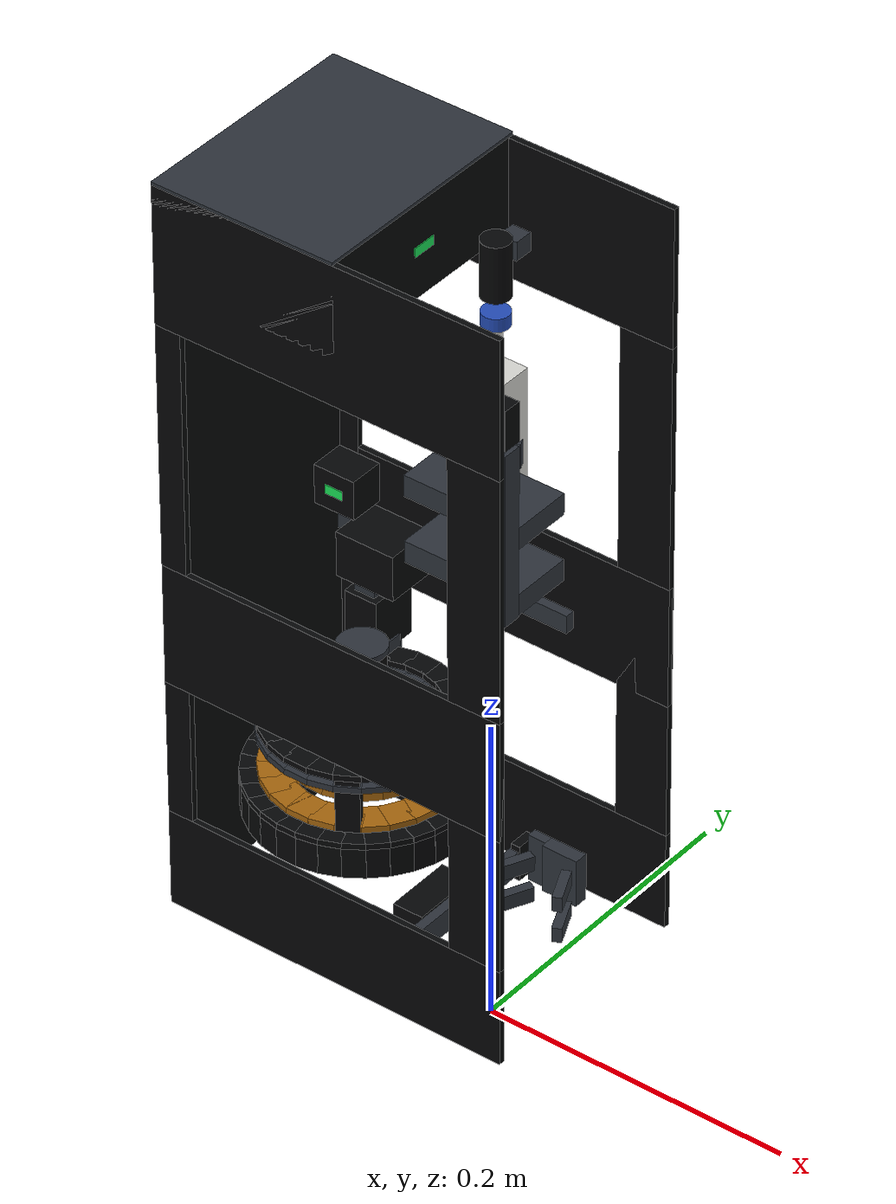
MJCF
<mujoco model="vertical_hand_minimal">
  <compiler angle="radian"/>
  <default>
    <geom condim="3" friction="0.6 0.005 0.0001" density="700"/>
  </default>
  <asset>
    <material name="Harness" rgba="0.020 0.022 0.026 1.000"/>
    <material name="Iris" rgba="0.650 0.400 0.050 1.000"/>
    <material name="LED" rgba="0.100 0.900 0.350 1.000"/>
    <material name="Links" rgba="0.180 0.200 0.230 1.000"/>
    <material name="Pipette" rgba="0.850 0.850 0.830 1.000"/>
    <material name="PipetteBlue" rgba="0.140 0.300 0.720 1.000"/>
    <material name="Steel" rgba="0.600 0.620 0.650 1.000"/>
  </asset>
  <worldbody>
    <body name="vertical_hand" pos="0.00000 0.00000 0.00000">
      <site name="pinch" pos="0.00000 0.00000 0.05710" quat="0 1 0 0" size="0.003" group="4"/>
      <geom name="cage_side_P_foot" type="box" size="0.11600 0.00200 0.03245" pos="-0.05100 0.07500 0.07755" material="Harness"/>
      <geom name="cage_side_P_band" type="box" size="0.11600 0.00200 0.04000" pos="-0.05100 0.07500 0.24000" material="Harness"/>
      <geom name="cage_side_P_top" type="box" size="0.11600 0.00200 0.04500" pos="-0.05100 0.07500 0.48500" material="Harness"/>
      <geom name="cage_side_P_back" type="box" size="0.00850 0.00200 0.16500" pos="-0.15850 0.07500 0.27500" material="Harness"/>
      <geom name="cage_side_P_front" type="box" size="0.01750 0.00200 0.16500" pos="0.04750 0.07500 0.27500" material="Harness"/>
      <geom name="cage_side_N_foot" type="box" size="0.11600 0.00200 0.03245" pos="-0.05100 -0.07500 0.07755" material="Harness"/>
      <geom name="cage_side_N_band" type="box" size="0.11600 0.00200 0.04000" pos="-0.05100 -0.07500 0.24000" material="Harness"/>
      <geom name="cage_side_N_top" type="box" size="0.11600 0.00200 0.04500" pos="-0.05100 -0.07500 0.48500" material="Harness"/>
      <geom name="cage_side_N_back" type="box" size="0.00850 0.00200 0.16500" pos="-0.15850 -0.07500 0.27500" material="Harness"/>
      <geom name="cage_side_N_front" type="box" size="0.01750 0.00200 0.16500" pos="0.04750 -0.07500 0.27500" material="Harness"/>
      <geom name="cage_back" type="box" size="0.00200 0.07300 0.24245" pos="-0.16500 0.00000 0.28755" material="Harness"/>
      <geom name="head" type="box" size="0.06100 0.07700 0.03000" pos="-0.10600 0.00000 0.50000" material="Harness"/>
      <geom name="head_top" type="box" size="0.06100 0.07700 0.00300" pos="-0.10600 0.00000 0.52900" material="Links"/>
      <geom name="head_led" type="box" size="0.00030 0.00800 0.00300" pos="-0.04490 0.00000 0.50000" material="LED"/>
      <geom name="beam" type="box" size="0.00300 0.07300 0.00800" pos="-0.02800 0.00000 0.05710" material="Links"/>
      <geom name="grip_servo" type="box" size="0.01000 0.02200 0.00800" pos="-0.04200 0.00000 0.05710" material="Harness"/>
      <geom name="x_rail" type="box" size="0.08000 0.00300 0.00600" pos="-0.08000 0.07000 0.23000" material="Links"/>
      <geom name="x_servo" type="box" size="0.01400 0.01150 0.01300" pos="-0.14900 0.06150 0.26300" material="Harness"/>
      <geom name="x_servo_led" type="box" size="0.00600 0.00040 0.00300" pos="-0.14900 0.05000 0.26300" material="LED"/>
      <geom name="x_carriage" type="box" size="0.02000 0.01650 0.01500" pos="-0.12000 0.05650 0.23100" material="Harness"/>
      <geom name="lift_column" type="box" size="0.00700 0.01200 0.03620" pos="-0.12000 0.05200 0.17980" material="Links"/>
      <geom name="p_rail" type="box" size="0.00600 0.00300 0.15580" pos="0.04500 -0.07000 0.29280" material="Harness"/>
      <geom name="p_servo" type="box" size="0.01600 0.00600 0.01300" pos="0.04500 -0.06100 0.46460" material="Harness"/>
      <geom name="p_servo_led" type="box" size="0.00600 0.00040 0.00300" pos="0.04500 -0.05500 0.46460" material="LED"/>
      <body name="jaw_P" pos="0.00000 0.00000 0.00000">
        <joint name="jaw_P" type="slide" axis="0 -1 0" range="0.00000 0.06135" damping="5"/>
        <geom name="jaw_P_pad" type="box" size="0.01200 0.00450 0.01600" pos="0.00000 0.06585 0.05710" material="Links"/>
        <geom name="jaw_P_carriage" type="box" size="0.00300 0.00700 0.01200" pos="-0.02700 0.06335 0.05710" material="Harness"/>
        <geom name="jaw_P_tab" type="box" size="0.00700 0.00300 0.01600" pos="-0.01700 0.06735 0.05710" material="Links"/>
        <geom name="jaw_P_wing_R0" type="box" size="0.01246 0.00300 0.00500" pos="0.01725 0.04105 0.04610" quat="0.843015 0 0 -0.537891" material="Links"/>
        <geom name="jaw_P_wing_R1" type="box" size="0.01246 0.00300 0.00500" pos="0.01725 0.04105 0.06810" quat="0.843015 0 0 -0.537891" material="Links"/>
        <geom name="jaw_P_wing_L0" type="box" size="0.01246 0.00300 0.00500" pos="-0.01725 0.04105 0.04610" quat="0.537891 0 0 -0.843015" material="Links"/>
        <geom name="jaw_P_wing_L1" type="box" size="0.01246 0.00300 0.00500" pos="-0.01725 0.04105 0.06810" quat="0.537891 0 0 -0.843015" material="Links"/>
        <site name="right_pad_touch" type="box" pos="0.00000 0.04535 0.05710" size="0.02400 0.01700 0.01600" rgba="0.9 0.4 0.1 0.25" group="4"/>
      </body>
      <body name="jaw_N" pos="0.00000 0.00000 0.00000">
        <joint name="jaw_N" type="slide" axis="0 1 0" range="0.00000 0.06135" damping="5"/>
        <geom name="jaw_N_pad" type="box" size="0.01200 0.00450 0.01600" pos="0.00000 -0.06585 0.05710" material="Links"/>
        <geom name="jaw_N_carriage" type="box" size="0.00300 0.00700 0.01200" pos="-0.02700 -0.06335 0.05710" material="Harness"/>
        <geom name="jaw_N_tab" type="box" size="0.00700 0.00300 0.01600" pos="-0.01700 -0.06735 0.05710" material="Links"/>
        <geom name="jaw_N_wing_R0" type="box" size="0.01246 0.00300 0.00500" pos="0.01725 -0.04105 0.05710" quat="0.843015 0 0 0.537891" material="Links"/>
        <geom name="jaw_N_wing_L0" type="box" size="0.01246 0.00300 0.00500" pos="-0.01725 -0.04105 0.05710" quat="0.537891 0 0 0.843015" material="Links"/>
        <site name="left_pad_touch" type="box" pos="0.00000 -0.04535 0.05710" size="0.02400 0.01700 0.01600" rgba="0.9 0.4 0.1 0.25" group="4"/>
      </body>
      <body name="clamp" pos="-0.09000 0.00000 0.11010">
        <geom name="lift_carriage" type="box" size="0.01100 0.01600 0.01900" pos="-0.03000 0.05200 0.08300" material="Harness"/>
        <geom name="bridge_y" type="box" size="0.01200 0.03000 0.00400" pos="-0.03000 0.02600 0.06600" material="Links"/>
        <geom name="bridge_x" type="box" size="0.01700 0.01200 0.00400" pos="-0.01700 0.00000 0.06600" material="Links"/>
        <geom name="mount_disc" type="cylinder" size="0.02000 0.00200" pos="0.00000 0.00000 0.06200" material="Harness"/>
        <geom name="sun_motor" type="cylinder" size="0.01400 0.01700" pos="0.00000 0.00000 0.08700" material="Harness"/>
        <geom name="sun_motor_cap" type="cylinder" size="0.01500 0.00200" pos="0.00000 0.00000 0.10400" material="Links"/>
        <geom name="housing_front_00" type="box" size="0.00500 0.00690 0.01000" pos="0.06400 0.00000 0.00600" material="Harness"/>
        <geom name="housing_front_01" type="box" size="0.00500 0.00690 0.01000" pos="0.06277 0.01249 0.00600" quat="0.995185 0 0 0.098017" material="Harness"/>
        <geom name="housing_front_02" type="box" size="0.00500 0.00690 0.01000" pos="0.05913 0.02449 0.00600" quat="0.980785 0 0 0.195090" material="Harness"/>
        <geom name="housing_front_03" type="box" size="0.00500 0.00690 0.01000" pos="0.05321 0.03556 0.00600" quat="0.956940 0 0 0.290285" material="Harness"/>
        <geom name="housing_front_04" type="box" size="0.00500 0.00690 0.01000" pos="0.04525 0.04525 0.00600" quat="0.923880 0 0 0.382683" material="Harness"/>
        <geom name="housing_front_05" type="box" size="0.00500 0.00690 0.01000" pos="0.03556 0.05321 0.00600" quat="0.881921 0 0 0.471397" material="Harness"/>
        <geom name="housing_front_06" type="box" size="0.00500 0.00690 0.01000" pos="0.02449 0.05913 0.00600" quat="0.831470 0 0 0.555570" material="Harness"/>
        <geom name="housing_front_07" type="box" size="0.00500 0.00690 0.01000" pos="0.01249 0.06277 0.00600" quat="0.773010 0 0 0.634393" material="Harness"/>
        <geom name="housing_front_08" type="box" size="0.00500 0.00690 0.01000" pos="0.00000 0.06400 0.00600" quat="0.707107 0 0 0.707107" material="Harness"/>
        <geom name="housing_front_09" type="box" size="0.00500 0.00690 0.01000" pos="-0.01249 0.06277 0.00600" quat="0.634393 0 0 0.773010" material="Harness"/>
        <geom name="housing_front_10" type="box" size="0.00500 0.00690 0.01000" pos="-0.02449 0.05913 0.00600" quat="0.555570 0 0 0.831470" material="Harness"/>
        <geom name="housing_front_11" type="box" size="0.00500 0.00690 0.01000" pos="-0.03556 0.05321 0.00600" quat="0.471397 0 0 0.881921" material="Harness"/>
        <geom name="housing_front_12" type="box" size="0.00500 0.00690 0.01000" pos="-0.04525 0.04525 0.00600" quat="0.382683 0 0 0.923880" material="Harness"/>
        <geom name="housing_front_13" type="box" size="0.00500 0.00690 0.01000" pos="-0.05321 0.03556 0.00600" quat="0.290285 0 0 0.956940" material="Harness"/>
        <geom name="housing_front_14" type="box" size="0.00500 0.00690 0.01000" pos="-0.05913 0.02449 0.00600" quat="0.195090 0 0 0.980785" material="Harness"/>
        <geom name="housing_front_15" type="box" size="0.00500 0.00690 0.01000" pos="-0.06277 0.01249 0.00600" quat="0.098017 0 0 0.995185" material="Harness"/>
        <geom name="housing_front_16" type="box" size="0.00500 0.00690 0.01000" pos="-0.06400 0.00000 0.00600" quat="0.000000 0 0 1.000000" material="Harness"/>
        <geom name="housing_front_17" type="box" size="0.00500 0.00690 0.01000" pos="-0.06277 -0.01249 0.00600" quat="-0.098017 0 0 0.995185" material="Harness"/>
        <geom name="housing_front_18" type="box" size="0.00500 0.00690 0.01000" pos="-0.05913 -0.02449 0.00600" quat="-0.195090 0 0 0.980785" material="Harness"/>
        <geom name="housing_front_19" type="box" size="0.00500 0.00690 0.01000" pos="-0.05321 -0.03556 0.00600" quat="-0.290285 0 0 0.956940" material="Harness"/>
        <geom name="housing_front_20" type="box" size="0.00500 0.00690 0.01000" pos="-0.04525 -0.04525 0.00600" quat="-0.382683 0 0 0.923880" material="Harness"/>
        <geom name="housing_front_21" type="box" size="0.00500 0.00690 0.01000" pos="-0.03556 -0.05321 0.00600" quat="-0.471397 0 0 0.881921" material="Harness"/>
        <geom name="housing_front_22" type="box" size="0.00500 0.00690 0.01000" pos="-0.02449 -0.05913 0.00600" quat="-0.555570 0 0 0.831470" material="Harness"/>
        <geom name="housing_front_23" type="box" size="0.00500 0.00690 0.01000" pos="-0.01249 -0.06277 0.00600" quat="-0.634393 0 0 0.773010" material="Harness"/>
        <geom name="housing_front_24" type="box" size="0.00500 0.00690 0.01000" pos="-0.00000 -0.06400 0.00600" quat="-0.707107 0 0 0.707107" material="Harness"/>
        <geom name="housing_front_25" type="box" size="0.00500 0.00690 0.01000" pos="0.01249 -0.06277 0.00600" quat="-0.773010 0 0 0.634393" material="Harness"/>
        <geom name="housing_front_26" type="box" size="0.00500 0.00690 0.01000" pos="0.02449 -0.05913 0.00600" quat="-0.831470 0 0 0.555570" material="Harness"/>
        <geom name="housing_front_27" type="box" size="0.00500 0.00690 0.01000" pos="0.03556 -0.05321 0.00600" quat="-0.881921 0 0 0.471397" material="Harness"/>
        <geom name="housing_front_28" type="box" size="0.00500 0.00690 0.01000" pos="0.04525 -0.04525 0.00600" quat="-0.923880 0 0 0.382683" material="Harness"/>
        <geom name="housing_front_29" type="box" size="0.00500 0.00690 0.01000" pos="0.05321 -0.03556 0.00600" quat="-0.956940 0 0 0.290285" material="Harness"/>
        <geom name="housing_front_30" type="box" size="0.00500 0.00690 0.01000" pos="0.05913 -0.02449 0.00600" quat="-0.980785 0 0 0.195090" material="Harness"/>
        <geom name="housing_front_31" type="box" size="0.00500 0.00690 0.01000" pos="0.06277 -0.01249 0.00600" quat="-0.995185 0 0 0.098017" material="Harness"/>
        <geom name="housing_shoulder_00" type="box" size="0.01050 0.00690 0.00200" pos="0.05850 0.00000 0.01800" material="Harness"/>
        <geom name="housing_shoulder_01" type="box" size="0.01050 0.00690 0.00200" pos="0.05738 0.01141 0.01800" quat="0.995185 0 0 0.098017" material="Harness"/>
        <geom name="housing_shoulder_02" type="box" size="0.01050 0.00690 0.00200" pos="0.05405 0.02239 0.01800" quat="0.980785 0 0 0.195090" material="Harness"/>
        <geom name="housing_shoulder_03" type="box" size="0.01050 0.00690 0.00200" pos="0.04864 0.03250 0.01800" quat="0.956940 0 0 0.290285" material="Harness"/>
        <geom name="housing_shoulder_04" type="box" size="0.01050 0.00690 0.00200" pos="0.04137 0.04137 0.01800" quat="0.923880 0 0 0.382683" material="Harness"/>
        <geom name="housing_shoulder_05" type="box" size="0.01050 0.00690 0.00200" pos="0.03250 0.04864 0.01800" quat="0.881921 0 0 0.471397" material="Harness"/>
        <geom name="housing_shoulder_06" type="box" size="0.01050 0.00690 0.00200" pos="0.02239 0.05405 0.01800" quat="0.831470 0 0 0.555570" material="Harness"/>
        <geom name="housing_shoulder_07" type="box" size="0.01050 0.00690 0.00200" pos="0.01141 0.05738 0.01800" quat="0.773010 0 0 0.634393" material="Harness"/>
        <geom name="housing_shoulder_08" type="box" size="0.01050 0.00690 0.00200" pos="0.00000 0.05850 0.01800" quat="0.707107 0 0 0.707107" material="Harness"/>
        <geom name="housing_shoulder_09" type="box" size="0.01050 0.00690 0.00200" pos="-0.01141 0.05738 0.01800" quat="0.634393 0 0 0.773010" material="Harness"/>
        <geom name="housing_shoulder_10" type="box" size="0.01050 0.00690 0.00200" pos="-0.02239 0.05405 0.01800" quat="0.555570 0 0 0.831470" material="Harness"/>
        <geom name="housing_shoulder_11" type="box" size="0.01050 0.00690 0.00200" pos="-0.03250 0.04864 0.01800" quat="0.471397 0 0 0.881921" material="Harness"/>
        <geom name="housing_shoulder_12" type="box" size="0.01050 0.00690 0.00200" pos="-0.04137 0.04137 0.01800" quat="0.382683 0 0 0.923880" material="Harness"/>
        <geom name="housing_shoulder_13" type="box" size="0.01050 0.00690 0.00200" pos="-0.04864 0.03250 0.01800" quat="0.290285 0 0 0.956940" material="Harness"/>
        <geom name="housing_shoulder_14" type="box" size="0.01050 0.00690 0.00200" pos="-0.05405 0.02239 0.01800" quat="0.195090 0 0 0.980785" material="Harness"/>
        <geom name="housing_shoulder_15" type="box" size="0.01050 0.00690 0.00200" pos="-0.05738 0.01141 0.01800" quat="0.098017 0 0 0.995185" material="Harness"/>
        <geom name="housing_shoulder_16" type="box" size="0.01050 0.00690 0.00200" pos="-0.05850 0.00000 0.01800" quat="0.000000 0 0 1.000000" material="Harness"/>
        <geom name="housing_shoulder_17" type="box" size="0.01050 0.00690 0.00200" pos="-0.05738 -0.01141 0.01800" quat="-0.098017 0 0 0.995185" material="Harness"/>
        <geom name="housing_shoulder_18" type="box" size="0.01050 0.00690 0.00200" pos="-0.05405 -0.02239 0.01800" quat="-0.195090 0 0 0.980785" material="Harness"/>
        <geom name="housing_shoulder_19" type="box" size="0.01050 0.00690 0.00200" pos="-0.04864 -0.03250 0.01800" quat="-0.290285 0 0 0.956940" material="Harness"/>
        <geom name="housing_shoulder_20" type="box" size="0.01050 0.00690 0.00200" pos="-0.04137 -0.04137 0.01800" quat="-0.382683 0 0 0.923880" material="Harness"/>
        <geom name="housing_shoulder_21" type="box" size="0.01050 0.00690 0.00200" pos="-0.03250 -0.04864 0.01800" quat="-0.471397 0 0 0.881921" material="Harness"/>
        <geom name="housing_shoulder_22" type="box" size="0.01050 0.00690 0.00200" pos="-0.02239 -0.05405 0.01800" quat="-0.555570 0 0 0.831470" material="Harness"/>
        <geom name="housing_shoulder_23" type="box" size="0.01050 0.00690 0.00200" pos="-0.01141 -0.05738 0.01800" quat="-0.634393 0 0 0.773010" material="Harness"/>
        <geom name="housing_shoulder_24" type="box" size="0.01050 0.00690 0.00200" pos="-0.00000 -0.05850 0.01800" quat="-0.707107 0 0 0.707107" material="Harness"/>
        <geom name="housing_shoulder_25" type="box" size="0.01050 0.00690 0.00200" pos="0.01141 -0.05738 0.01800" quat="-0.773010 0 0 0.634393" material="Harness"/>
        <geom name="housing_shoulder_26" type="box" size="0.01050 0.00690 0.00200" pos="0.02239 -0.05405 0.01800" quat="-0.831470 0 0 0.555570" material="Harness"/>
        <geom name="housing_shoulder_27" type="box" size="0.01050 0.00690 0.00200" pos="0.03250 -0.04864 0.01800" quat="-0.881921 0 0 0.471397" material="Harness"/>
        <geom name="housing_shoulder_28" type="box" size="0.01050 0.00690 0.00200" pos="0.04137 -0.04137 0.01800" quat="-0.923880 0 0 0.382683" material="Harness"/>
        <geom name="housing_shoulder_29" type="box" size="0.01050 0.00690 0.00200" pos="0.04864 -0.03250 0.01800" quat="-0.956940 0 0 0.290285" material="Harness"/>
        <geom name="housing_shoulder_30" type="box" size="0.01050 0.00690 0.00200" pos="0.05405 -0.02239 0.01800" quat="-0.980785 0 0 0.195090" material="Harness"/>
        <geom name="housing_shoulder_31" type="box" size="0.01050 0.00690 0.00200" pos="0.05738 -0.01141 0.01800" quat="-0.995185 0 0 0.098017" material="Harness"/>
        <geom name="strut_0" type="box" size="0.00500 0.00700 0.02100" pos="0.02700 0.04677 0.03900" quat="0.866025 0 0 0.500000" material="Harness"/>
        <geom name="strut_1" type="box" size="0.00500 0.00700 0.02100" pos="-0.05400 0.00000 0.03900" quat="0.000000 0 0 1.000000" material="Harness"/>
        <geom name="strut_2" type="box" size="0.00500 0.00700 0.02100" pos="0.02700 -0.04677 0.03900" quat="-0.866025 0 0 0.500000" material="Harness"/>
        <geom name="carrier_00" type="box" size="0.02000 0.00612 0.00300" pos="0.02600 0.00000 0.04500" material="Harness"/>
        <geom name="carrier_01" type="box" size="0.02000 0.00612 0.00300" pos="0.02511 0.00673 0.04500" quat="0.991445 0 0 0.130526" material="Harness"/>
        <geom name="carrier_02" type="box" size="0.02000 0.00612 0.00300" pos="0.02252 0.01300 0.04500" quat="0.965926 0 0 0.258819" material="Harness"/>
        <geom name="carrier_03" type="box" size="0.02000 0.00612 0.00300" pos="0.01838 0.01838 0.04500" quat="0.923880 0 0 0.382683" material="Harness"/>
        <geom name="carrier_04" type="box" size="0.02000 0.00612 0.00300" pos="0.01300 0.02252 0.04500" quat="0.866025 0 0 0.500000" material="Harness"/>
        <geom name="carrier_05" type="box" size="0.02000 0.00612 0.00300" pos="0.00673 0.02511 0.04500" quat="0.793353 0 0 0.608761" material="Harness"/>
        <geom name="carrier_06" type="box" size="0.02000 0.00612 0.00300" pos="0.00000 0.02600 0.04500" quat="0.707107 0 0 0.707107" material="Harness"/>
        <geom name="carrier_07" type="box" size="0.02000 0.00612 0.00300" pos="-0.00673 0.02511 0.04500" quat="0.608761 0 0 0.793353" material="Harness"/>
        <geom name="carrier_08" type="box" size="0.02000 0.00612 0.00300" pos="-0.01300 0.02252 0.04500" quat="0.500000 0 0 0.866025" material="Harness"/>
        <geom name="carrier_09" type="box" size="0.02000 0.00612 0.00300" pos="-0.01838 0.01838 0.04500" quat="0.382683 0 0 0.923880" material="Harness"/>
        <geom name="carrier_10" type="box" size="0.02000 0.00612 0.00300" pos="-0.02252 0.01300 0.04500" quat="0.258819 0 0 0.965926" material="Harness"/>
        <geom name="carrier_11" type="box" size="0.02000 0.00612 0.00300" pos="-0.02511 0.00673 0.04500" quat="0.130526 0 0 0.991445" material="Harness"/>
        <geom name="carrier_12" type="box" size="0.02000 0.00612 0.00300" pos="-0.02600 0.00000 0.04500" quat="0.000000 0 0 1.000000" material="Harness"/>
        <geom name="carrier_13" type="box" size="0.02000 0.00612 0.00300" pos="-0.02511 -0.00673 0.04500" quat="-0.130526 0 0 0.991445" material="Harness"/>
        <geom name="carrier_14" type="box" size="0.02000 0.00612 0.00300" pos="-0.02252 -0.01300 0.04500" quat="-0.258819 0 0 0.965926" material="Harness"/>
        <geom name="carrier_15" type="box" size="0.02000 0.00612 0.00300" pos="-0.01838 -0.01838 0.04500" quat="-0.382683 0 0 0.923880" material="Harness"/>
        <geom name="carrier_16" type="box" size="0.02000 0.00612 0.00300" pos="-0.01300 -0.02252 0.04500" quat="-0.500000 0 0 0.866025" material="Harness"/>
        <geom name="carrier_17" type="box" size="0.02000 0.00612 0.00300" pos="-0.00673 -0.02511 0.04500" quat="-0.608761 0 0 0.793353" material="Harness"/>
        <geom name="carrier_18" type="box" size="0.02000 0.00612 0.00300" pos="-0.00000 -0.02600 0.04500" quat="-0.707107 0 0 0.707107" material="Harness"/>
        <geom name="carrier_19" type="box" size="0.02000 0.00612 0.00300" pos="0.00673 -0.02511 0.04500" quat="-0.793353 0 0 0.608761" material="Harness"/>
        <geom name="carrier_20" type="box" size="0.02000 0.00612 0.00300" pos="0.01300 -0.02252 0.04500" quat="-0.866025 0 0 0.500000" material="Harness"/>
        <geom name="carrier_21" type="box" size="0.02000 0.00612 0.00300" pos="0.01838 -0.01838 0.04500" quat="-0.923880 0 0 0.382683" material="Harness"/>
        <geom name="carrier_22" type="box" size="0.02000 0.00612 0.00300" pos="0.02252 -0.01300 0.04500" quat="-0.965926 0 0 0.258819" material="Harness"/>
        <geom name="carrier_23" type="box" size="0.02000 0.00612 0.00300" pos="0.02511 -0.00673 0.04500" quat="-0.991445 0 0 0.130526" material="Harness"/>
        <geom name="clutch_00" type="box" size="0.00700 0.00799 0.00200" pos="0.05300 0.00000 0.05000" material="Links"/>
        <geom name="clutch_01" type="box" size="0.00700 0.00799 0.00200" pos="0.05119 0.01372 0.05000" quat="0.991445 0 0 0.130526" material="Links"/>
        <geom name="clutch_02" type="box" size="0.00700 0.00799 0.00200" pos="0.04590 0.02650 0.05000" quat="0.965926 0 0 0.258819" material="Links"/>
        <geom name="clutch_03" type="box" size="0.00700 0.00799 0.00200" pos="0.03748 0.03748 0.05000" quat="0.923880 0 0 0.382683" material="Links"/>
        <geom name="clutch_04" type="box" size="0.00700 0.00799 0.00200" pos="0.02650 0.04590 0.05000" quat="0.866025 0 0 0.500000" material="Links"/>
        <geom name="clutch_05" type="box" size="0.00700 0.00799 0.00200" pos="0.01372 0.05119 0.05000" quat="0.793353 0 0 0.608761" material="Links"/>
        <geom name="clutch_06" type="box" size="0.00700 0.00799 0.00200" pos="0.00000 0.05300 0.05000" quat="0.707107 0 0 0.707107" material="Links"/>
        <geom name="clutch_07" type="box" size="0.00700 0.00799 0.00200" pos="-0.01372 0.05119 0.05000" quat="0.608761 0 0 0.793353" material="Links"/>
        <geom name="clutch_08" type="box" size="0.00700 0.00799 0.00200" pos="-0.02650 0.04590 0.05000" quat="0.500000 0 0 0.866025" material="Links"/>
        <geom name="clutch_09" type="box" size="0.00700 0.00799 0.00200" pos="-0.03748 0.03748 0.05000" quat="0.382683 0 0 0.923880" material="Links"/>
        <geom name="clutch_10" type="box" size="0.00700 0.00799 0.00200" pos="-0.04590 0.02650 0.05000" quat="0.258819 0 0 0.965926" material="Links"/>
        <geom name="clutch_11" type="box" size="0.00700 0.00799 0.00200" pos="-0.05119 0.01372 0.05000" quat="0.130526 0 0 0.991445" material="Links"/>
        <geom name="clutch_12" type="box" size="0.00700 0.00799 0.00200" pos="-0.05300 0.00000 0.05000" quat="0.000000 0 0 1.000000" material="Links"/>
        <geom name="clutch_13" type="box" size="0.00700 0.00799 0.00200" pos="-0.05119 -0.01372 0.05000" quat="-0.130526 0 0 0.991445" material="Links"/>
        <geom name="clutch_14" type="box" size="0.00700 0.00799 0.00200" pos="-0.04590 -0.02650 0.05000" quat="-0.258819 0 0 0.965926" material="Links"/>
        <geom name="clutch_15" type="box" size="0.00700 0.00799 0.00200" pos="-0.03748 -0.03748 0.05000" quat="-0.382683 0 0 0.923880" material="Links"/>
        <geom name="clutch_16" type="box" size="0.00700 0.00799 0.00200" pos="-0.02650 -0.04590 0.05000" quat="-0.500000 0 0 0.866025" material="Links"/>
        <geom name="clutch_17" type="box" size="0.00700 0.00799 0.00200" pos="-0.01372 -0.05119 0.05000" quat="-0.608761 0 0 0.793353" material="Links"/>
        <geom name="clutch_18" type="box" size="0.00700 0.00799 0.00200" pos="-0.00000 -0.05300 0.05000" quat="-0.707107 0 0 0.707107" material="Links"/>
        <geom name="clutch_19" type="box" size="0.00700 0.00799 0.00200" pos="0.01372 -0.05119 0.05000" quat="-0.793353 0 0 0.608761" material="Links"/>
        <geom name="clutch_20" type="box" size="0.00700 0.00799 0.00200" pos="0.02650 -0.04590 0.05000" quat="-0.866025 0 0 0.500000" material="Links"/>
        <geom name="clutch_21" type="box" size="0.00700 0.00799 0.00200" pos="0.03748 -0.03748 0.05000" quat="-0.923880 0 0 0.382683" material="Links"/>
        <geom name="clutch_22" type="box" size="0.00700 0.00799 0.00200" pos="0.04590 -0.02650 0.05000" quat="-0.965926 0 0 0.258819" material="Links"/>
        <geom name="clutch_23" type="box" size="0.00700 0.00799 0.00200" pos="0.05119 -0.01372 0.05000" quat="-0.991445 0 0 0.130526" material="Links"/>
        <geom name="top_ring_00" type="box" size="0.00700 0.00799 0.00200" pos="0.05300 0.00000 0.05800" material="Harness"/>
        <geom name="top_ring_01" type="box" size="0.00700 0.00799 0.00200" pos="0.05119 0.01372 0.05800" quat="0.991445 0 0 0.130526" material="Harness"/>
        <geom name="top_ring_02" type="box" size="0.00700 0.00799 0.00200" pos="0.04590 0.02650 0.05800" quat="0.965926 0 0 0.258819" material="Harness"/>
        <geom name="top_ring_03" type="box" size="0.00700 0.00799 0.00200" pos="0.03748 0.03748 0.05800" quat="0.923880 0 0 0.382683" material="Harness"/>
        <geom name="top_ring_04" type="box" size="0.00700 0.00799 0.00200" pos="0.02650 0.04590 0.05800" quat="0.866025 0 0 0.500000" material="Harness"/>
        <geom name="top_ring_05" type="box" size="0.00700 0.00799 0.00200" pos="0.01372 0.05119 0.05800" quat="0.793353 0 0 0.608761" material="Harness"/>
        <geom name="top_ring_06" type="box" size="0.00700 0.00799 0.00200" pos="0.00000 0.05300 0.05800" quat="0.707107 0 0 0.707107" material="Harness"/>
        <geom name="top_ring_07" type="box" size="0.00700 0.00799 0.00200" pos="-0.01372 0.05119 0.05800" quat="0.608761 0 0 0.793353" material="Harness"/>
        <geom name="top_ring_08" type="box" size="0.00700 0.00799 0.00200" pos="-0.02650 0.04590 0.05800" quat="0.500000 0 0 0.866025" material="Harness"/>
        <geom name="top_ring_09" type="box" size="0.00700 0.00799 0.00200" pos="-0.03748 0.03748 0.05800" quat="0.382683 0 0 0.923880" material="Harness"/>
        <geom name="top_ring_10" type="box" size="0.00700 0.00799 0.00200" pos="-0.04590 0.02650 0.05800" quat="0.258819 0 0 0.965926" material="Harness"/>
        <geom name="top_ring_11" type="box" size="0.00700 0.00799 0.00200" pos="-0.05119 0.01372 0.05800" quat="0.130526 0 0 0.991445" material="Harness"/>
        <geom name="top_ring_12" type="box" size="0.00700 0.00799 0.00200" pos="-0.05300 0.00000 0.05800" quat="0.000000 0 0 1.000000" material="Harness"/>
        <geom name="top_ring_13" type="box" size="0.00700 0.00799 0.00200" pos="-0.05119 -0.01372 0.05800" quat="-0.130526 0 0 0.991445" material="Harness"/>
        <geom name="top_ring_14" type="box" size="0.00700 0.00799 0.00200" pos="-0.04590 -0.02650 0.05800" quat="-0.258819 0 0 0.965926" material="Harness"/>
        <geom name="top_ring_15" type="box" size="0.00700 0.00799 0.00200" pos="-0.03748 -0.03748 0.05800" quat="-0.382683 0 0 0.923880" material="Harness"/>
        <geom name="top_ring_16" type="box" size="0.00700 0.00799 0.00200" pos="-0.02650 -0.04590 0.05800" quat="-0.500000 0 0 0.866025" material="Harness"/>
        <geom name="top_ring_17" type="box" size="0.00700 0.00799 0.00200" pos="-0.01372 -0.05119 0.05800" quat="-0.608761 0 0 0.793353" material="Harness"/>
        <geom name="top_ring_18" type="box" size="0.00700 0.00799 0.00200" pos="-0.00000 -0.05300 0.05800" quat="-0.707107 0 0 0.707107" material="Harness"/>
        <geom name="top_ring_19" type="box" size="0.00700 0.00799 0.00200" pos="0.01372 -0.05119 0.05800" quat="-0.793353 0 0 0.608761" material="Harness"/>
        <geom name="top_ring_20" type="box" size="0.00700 0.00799 0.00200" pos="0.02650 -0.04590 0.05800" quat="-0.866025 0 0 0.500000" material="Harness"/>
        <geom name="top_ring_21" type="box" size="0.00700 0.00799 0.00200" pos="0.03748 -0.03748 0.05800" quat="-0.923880 0 0 0.382683" material="Harness"/>
        <geom name="top_ring_22" type="box" size="0.00700 0.00799 0.00200" pos="0.04590 -0.02650 0.05800" quat="-0.965926 0 0 0.258819" material="Harness"/>
        <geom name="top_ring_23" type="box" size="0.00700 0.00799 0.00200" pos="0.05119 -0.01372 0.05800" quat="-0.991445 0 0 0.130526" material="Harness"/>
        <geom name="cam_ring_00" type="box" size="0.00900 0.00786 0.00300" pos="0.05000 0.00000 0.02100" material="Iris"/>
        <geom name="cam_ring_01" type="box" size="0.00900 0.00786 0.00300" pos="0.04830 0.01294 0.02100" quat="0.991445 0 0 0.130526" material="Iris"/>
        <geom name="cam_ring_02" type="box" size="0.00900 0.00786 0.00300" pos="0.04330 0.02500 0.02100" quat="0.965926 0 0 0.258819" material="Iris"/>
        <geom name="cam_ring_03" type="box" size="0.00900 0.00786 0.00300" pos="0.03536 0.03536 0.02100" quat="0.923880 0 0 0.382683" material="Iris"/>
        <geom name="cam_ring_04" type="box" size="0.00900 0.00786 0.00300" pos="0.02500 0.04330 0.02100" quat="0.866025 0 0 0.500000" material="Iris"/>
        <geom name="cam_ring_05" type="box" size="0.00900 0.00786 0.00300" pos="0.01294 0.04830 0.02100" quat="0.793353 0 0 0.608761" material="Iris"/>
        <geom name="cam_ring_06" type="box" size="0.00900 0.00786 0.00300" pos="0.00000 0.05000 0.02100" quat="0.707107 0 0 0.707107" material="Iris"/>
        <geom name="cam_ring_07" type="box" size="0.00900 0.00786 0.00300" pos="-0.01294 0.04830 0.02100" quat="0.608761 0 0 0.793353" material="Iris"/>
        <geom name="cam_ring_08" type="box" size="0.00900 0.00786 0.00300" pos="-0.02500 0.04330 0.02100" quat="0.500000 0 0 0.866025" material="Iris"/>
        <geom name="cam_ring_09" type="box" size="0.00900 0.00786 0.00300" pos="-0.03536 0.03536 0.02100" quat="0.382683 0 0 0.923880" material="Iris"/>
        <geom name="cam_ring_10" type="box" size="0.00900 0.00786 0.00300" pos="-0.04330 0.02500 0.02100" quat="0.258819 0 0 0.965926" material="Iris"/>
        <geom name="cam_ring_11" type="box" size="0.00900 0.00786 0.00300" pos="-0.04830 0.01294 0.02100" quat="0.130526 0 0 0.991445" material="Iris"/>
        <geom name="cam_ring_12" type="box" size="0.00900 0.00786 0.00300" pos="-0.05000 0.00000 0.02100" quat="0.000000 0 0 1.000000" material="Iris"/>
        <geom name="cam_ring_13" type="box" size="0.00900 0.00786 0.00300" pos="-0.04830 -0.01294 0.02100" quat="-0.130526 0 0 0.991445" material="Iris"/>
        <geom name="cam_ring_14" type="box" size="0.00900 0.00786 0.00300" pos="-0.04330 -0.02500 0.02100" quat="-0.258819 0 0 0.965926" material="Iris"/>
        <geom name="cam_ring_15" type="box" size="0.00900 0.00786 0.00300" pos="-0.03536 -0.03536 0.02100" quat="-0.382683 0 0 0.923880" material="Iris"/>
        <geom name="cam_ring_16" type="box" size="0.00900 0.00786 0.00300" pos="-0.02500 -0.04330 0.02100" quat="-0.500000 0 0 0.866025" material="Iris"/>
        <geom name="cam_ring_17" type="box" size="0.00900 0.00786 0.00300" pos="-0.01294 -0.04830 0.02100" quat="-0.608761 0 0 0.793353" material="Iris"/>
        <geom name="cam_ring_18" type="box" size="0.00900 0.00786 0.00300" pos="-0.00000 -0.05000 0.02100" quat="-0.707107 0 0 0.707107" material="Iris"/>
        <geom name="cam_ring_19" type="box" size="0.00900 0.00786 0.00300" pos="0.01294 -0.04830 0.02100" quat="-0.793353 0 0 0.608761" material="Iris"/>
        <geom name="cam_ring_20" type="box" size="0.00900 0.00786 0.00300" pos="0.02500 -0.04330 0.02100" quat="-0.866025 0 0 0.500000" material="Iris"/>
        <geom name="cam_ring_21" type="box" size="0.00900 0.00786 0.00300" pos="0.03536 -0.03536 0.02100" quat="-0.923880 0 0 0.382683" material="Iris"/>
        <geom name="cam_ring_22" type="box" size="0.00900 0.00786 0.00300" pos="0.04330 -0.02500 0.02100" quat="-0.965926 0 0 0.258819" material="Iris"/>
        <geom name="cam_ring_23" type="box" size="0.00900 0.00786 0.00300" pos="0.04830 -0.01294 0.02100" quat="-0.991445 0 0 0.130526" material="Iris"/>
        <geom name="ring_gear_00" type="box" size="0.00400 0.00586 0.00400" pos="0.04000 0.00000 0.03400" material="Iris"/>
        <geom name="ring_gear_01" type="box" size="0.00400 0.00586 0.00400" pos="0.03864 0.01035 0.03400" quat="0.991445 0 0 0.130526" material="Iris"/>
        <geom name="ring_gear_02" type="box" size="0.00400 0.00586 0.00400" pos="0.03464 0.02000 0.03400" quat="0.965926 0 0 0.258819" material="Iris"/>
        <geom name="ring_gear_03" type="box" size="0.00400 0.00586 0.00400" pos="0.02828 0.02828 0.03400" quat="0.923880 0 0 0.382683" material="Iris"/>
        <geom name="ring_gear_04" type="box" size="0.00400 0.00586 0.00400" pos="0.02000 0.03464 0.03400" quat="0.866025 0 0 0.500000" material="Iris"/>
        <geom name="ring_gear_05" type="box" size="0.00400 0.00586 0.00400" pos="0.01035 0.03864 0.03400" quat="0.793353 0 0 0.608761" material="Iris"/>
        <geom name="ring_gear_06" type="box" size="0.00400 0.00586 0.00400" pos="0.00000 0.04000 0.03400" quat="0.707107 0 0 0.707107" material="Iris"/>
        <geom name="ring_gear_07" type="box" size="0.00400 0.00586 0.00400" pos="-0.01035 0.03864 0.03400" quat="0.608761 0 0 0.793353" material="Iris"/>
        <geom name="ring_gear_08" type="box" size="0.00400 0.00586 0.00400" pos="-0.02000 0.03464 0.03400" quat="0.500000 0 0 0.866025" material="Iris"/>
        <geom name="ring_gear_09" type="box" size="0.00400 0.00586 0.00400" pos="-0.02828 0.02828 0.03400" quat="0.382683 0 0 0.923880" material="Iris"/>
        <geom name="ring_gear_10" type="box" size="0.00400 0.00586 0.00400" pos="-0.03464 0.02000 0.03400" quat="0.258819 0 0 0.965926" material="Iris"/>
        <geom name="ring_gear_11" type="box" size="0.00400 0.00586 0.00400" pos="-0.03864 0.01035 0.03400" quat="0.130526 0 0 0.991445" material="Iris"/>
        <geom name="ring_gear_12" type="box" size="0.00400 0.00586 0.00400" pos="-0.04000 0.00000 0.03400" quat="0.000000 0 0 1.000000" material="Iris"/>
        <geom name="ring_gear_13" type="box" size="0.00400 0.00586 0.00400" pos="-0.03864 -0.01035 0.03400" quat="-0.130526 0 0 0.991445" material="Iris"/>
        <geom name="ring_gear_14" type="box" size="0.00400 0.00586 0.00400" pos="-0.03464 -0.02000 0.03400" quat="-0.258819 0 0 0.965926" material="Iris"/>
        <geom name="ring_gear_15" type="box" size="0.00400 0.00586 0.00400" pos="-0.02828 -0.02828 0.03400" quat="-0.382683 0 0 0.923880" material="Iris"/>
        <geom name="ring_gear_16" type="box" size="0.00400 0.00586 0.00400" pos="-0.02000 -0.03464 0.03400" quat="-0.500000 0 0 0.866025" material="Iris"/>
        <geom name="ring_gear_17" type="box" size="0.00400 0.00586 0.00400" pos="-0.01035 -0.03864 0.03400" quat="-0.608761 0 0 0.793353" material="Iris"/>
        <geom name="ring_gear_18" type="box" size="0.00400 0.00586 0.00400" pos="-0.00000 -0.04000 0.03400" quat="-0.707107 0 0 0.707107" material="Iris"/>
        <geom name="ring_gear_19" type="box" size="0.00400 0.00586 0.00400" pos="0.01035 -0.03864 0.03400" quat="-0.793353 0 0 0.608761" material="Iris"/>
        <geom name="ring_gear_20" type="box" size="0.00400 0.00586 0.00400" pos="0.02000 -0.03464 0.03400" quat="-0.866025 0 0 0.500000" material="Iris"/>
        <geom name="ring_gear_21" type="box" size="0.00400 0.00586 0.00400" pos="0.02828 -0.02828 0.03400" quat="-0.923880 0 0 0.382683" material="Iris"/>
        <geom name="ring_gear_22" type="box" size="0.00400 0.00586 0.00400" pos="0.03464 -0.02000 0.03400" quat="-0.965926 0 0 0.258819" material="Iris"/>
        <geom name="ring_gear_23" type="box" size="0.00400 0.00586 0.00400" pos="0.03864 -0.01035 0.03400" quat="-0.991445 0 0 0.130526" material="Iris"/>
        <geom name="blade_0" type="box" size="0.00600 0.03100 0.00125" pos="0.03491 0.02436 0.00125" quat="0.904534 0 0 0.426401" material="Iris"/>
        <geom name="blade_1" type="box" size="0.00600 0.03100 0.00125" pos="-0.00364 0.04241 0.00375" quat="0.570149 0 0 0.821541" material="Iris"/>
        <geom name="blade_2" type="box" size="0.00600 0.03100 0.00125" pos="-0.03855 0.01805 0.00625" quat="0.082993 0 0 0.996550" material="Iris"/>
        <geom name="blade_3" type="box" size="0.00600 0.03100 0.00125" pos="-0.03491 -0.02436 0.00875" quat="-0.426401 0 0 0.904534" material="Iris"/>
        <geom name="blade_4" type="box" size="0.00600 0.03100 0.00125" pos="0.00364 -0.04241 0.01125" quat="-0.821541 0 0 0.570149" material="Iris"/>
        <geom name="blade_5" type="box" size="0.00600 0.03100 0.00125" pos="0.03855 -0.01805 0.01375" quat="-0.996550 0 0 0.082993" material="Iris"/>
      </body>
      <body name="pipette" pos="0.00000 0.00000 0.22010">
        <geom name="p_carriage" type="box" size="0.01600 0.00600 0.05575" pos="0.04500 -0.06100 0.17275" material="Links"/>
        <geom name="p_arm_125" type="box" size="0.03850 0.01950 0.00700" pos="0.02250 -0.03550 0.12500" material="Links"/>
        <geom name="p_ring_125_00" type="box" size="0.00225 0.00338 0.00800" pos="0.01475 0.00000 0.12500" material="Links"/>
        <geom name="p_ring_125_01" type="box" size="0.00225 0.00338 0.00800" pos="0.01363 0.00564 0.12500" quat="0.980785 0 0 0.195090" material="Links"/>
        <geom name="p_ring_125_02" type="box" size="0.00225 0.00338 0.00800" pos="0.01043 0.01043 0.12500" quat="0.923880 0 0 0.382683" material="Links"/>
        <geom name="p_ring_125_03" type="box" size="0.00225 0.00338 0.00800" pos="0.00564 0.01363 0.12500" quat="0.831470 0 0 0.555570" material="Links"/>
        <geom name="p_ring_125_04" type="box" size="0.00225 0.00338 0.00800" pos="0.00000 0.01475 0.12500" quat="0.707107 0 0 0.707107" material="Links"/>
        <geom name="p_ring_125_05" type="box" size="0.00225 0.00338 0.00800" pos="-0.00564 0.01363 0.12500" quat="0.555570 0 0 0.831470" material="Links"/>
        <geom name="p_ring_125_06" type="box" size="0.00225 0.00338 0.00800" pos="-0.01043 0.01043 0.12500" quat="0.382683 0 0 0.923880" material="Links"/>
        <geom name="p_ring_125_07" type="box" size="0.00225 0.00338 0.00800" pos="-0.01363 0.00564 0.12500" quat="0.195090 0 0 0.980785" material="Links"/>
        <geom name="p_ring_125_08" type="box" size="0.00225 0.00338 0.00800" pos="-0.01475 0.00000 0.12500" quat="0.000000 0 0 1.000000" material="Links"/>
        <geom name="p_ring_125_09" type="box" size="0.00225 0.00338 0.00800" pos="-0.01363 -0.00564 0.12500" quat="-0.195090 0 0 0.980785" material="Links"/>
        <geom name="p_ring_125_10" type="box" size="0.00225 0.00338 0.00800" pos="-0.01043 -0.01043 0.12500" quat="-0.382683 0 0 0.923880" material="Links"/>
        <geom name="p_ring_125_11" type="box" size="0.00225 0.00338 0.00800" pos="-0.00564 -0.01363 0.12500" quat="-0.555570 0 0 0.831470" material="Links"/>
        <geom name="p_ring_125_12" type="box" size="0.00225 0.00338 0.00800" pos="-0.00000 -0.01475 0.12500" quat="-0.707107 0 0 0.707107" material="Links"/>
        <geom name="p_ring_125_13" type="box" size="0.00225 0.00338 0.00800" pos="0.00564 -0.01363 0.12500" quat="-0.831470 0 0 0.555570" material="Links"/>
        <geom name="p_ring_125_14" type="box" size="0.00225 0.00338 0.00800" pos="0.01043 -0.01043 0.12500" quat="-0.923880 0 0 0.382683" material="Links"/>
        <geom name="p_ring_125_15" type="box" size="0.00225 0.00338 0.00800" pos="0.01363 -0.00564 0.12500" quat="-0.980785 0 0 0.195090" material="Links"/>
        <geom name="p_arm_168" type="box" size="0.03850 0.01950 0.00700" pos="0.02250 -0.03550 0.16850" material="Links"/>
        <geom name="p_ring_168_00" type="box" size="0.00225 0.00338 0.00800" pos="0.01475 0.00000 0.16850" material="Links"/>
        <geom name="p_ring_168_01" type="box" size="0.00225 0.00338 0.00800" pos="0.01363 0.00564 0.16850" quat="0.980785 0 0 0.195090" material="Links"/>
        <geom name="p_ring_168_02" type="box" size="0.00225 0.00338 0.00800" pos="0.01043 0.01043 0.16850" quat="0.923880 0 0 0.382683" material="Links"/>
        <geom name="p_ring_168_03" type="box" size="0.00225 0.00338 0.00800" pos="0.00564 0.01363 0.16850" quat="0.831470 0 0 0.555570" material="Links"/>
        <geom name="p_ring_168_04" type="box" size="0.00225 0.00338 0.00800" pos="0.00000 0.01475 0.16850" quat="0.707107 0 0 0.707107" material="Links"/>
        <geom name="p_ring_168_05" type="box" size="0.00225 0.00338 0.00800" pos="-0.00564 0.01363 0.16850" quat="0.555570 0 0 0.831470" material="Links"/>
        <geom name="p_ring_168_06" type="box" size="0.00225 0.00338 0.00800" pos="-0.01043 0.01043 0.16850" quat="0.382683 0 0 0.923880" material="Links"/>
        <geom name="p_ring_168_07" type="box" size="0.00225 0.00338 0.00800" pos="-0.01363 0.00564 0.16850" quat="0.195090 0 0 0.980785" material="Links"/>
        <geom name="p_ring_168_08" type="box" size="0.00225 0.00338 0.00800" pos="-0.01475 0.00000 0.16850" quat="0.000000 0 0 1.000000" material="Links"/>
        <geom name="p_ring_168_09" type="box" size="0.00225 0.00338 0.00800" pos="-0.01363 -0.00564 0.16850" quat="-0.195090 0 0 0.980785" material="Links"/>
        <geom name="p_ring_168_10" type="box" size="0.00225 0.00338 0.00800" pos="-0.01043 -0.01043 0.16850" quat="-0.382683 0 0 0.923880" material="Links"/>
        <geom name="p_ring_168_11" type="box" size="0.00225 0.00338 0.00800" pos="-0.00564 -0.01363 0.16850" quat="-0.555570 0 0 0.831470" material="Links"/>
        <geom name="p_ring_168_12" type="box" size="0.00225 0.00338 0.00800" pos="-0.00000 -0.01475 0.16850" quat="-0.707107 0 0 0.707107" material="Links"/>
        <geom name="p_ring_168_13" type="box" size="0.00225 0.00338 0.00800" pos="0.00564 -0.01363 0.16850" quat="-0.831470 0 0 0.555570" material="Links"/>
        <geom name="p_ring_168_14" type="box" size="0.00225 0.00338 0.00800" pos="0.01043 -0.01043 0.16850" quat="-0.923880 0 0 0.382683" material="Links"/>
        <geom name="p_ring_168_15" type="box" size="0.00225 0.00338 0.00800" pos="0.01363 -0.00564 0.16850" quat="-0.980785 0 0 0.195090" material="Links"/>
        <geom name="p_tip" type="cylinder" size="0.00360 0.00600" pos="0.00000 0.00000 0.00600" material="Harness"/>
        <geom name="p_shaft" type="cylinder" size="0.00580 0.03900" pos="0.00000 0.00000 0.05100" material="PipetteBlue"/>
        <geom name="p_collar" type="cylinder" size="0.01120 0.01300" pos="0.00000 0.00000 0.10300" material="PipetteBlue"/>
        <geom name="p_body" type="box" size="0.01500 0.01200 0.05250" pos="0.00000 0.00000 0.16850" material="Pipette"/>
        <geom name="p_plunger" type="cylinder" size="0.00400 0.01600" pos="0.00300 0.00000 0.23500" material="Pipette"/>
        <geom name="p_button" type="cylinder" size="0.00850 0.00425" pos="0.00300 0.00000 0.25525" material="PipetteBlue"/>
        <geom name="p_actuator" type="cylinder" size="0.00900 0.01800" pos="0.00300 0.00000 0.28750" material="Harness"/>
        <geom name="p_actuator_arm" type="box" size="0.00600 0.00600 0.00600" pos="0.00000 0.02000 0.29050" material="Links"/>
        <geom name="p_hook" type="box" size="0.01400 0.00800 0.00350" pos="-0.02500 0.00000 0.21300" material="Links"/>
      </body>
    </body>
  </worldbody>
  <contact>
    <exclude body1="jaw_P" body2="jaw_N"/>
  </contact>
  <equality>
    <joint joint1="jaw_N" joint2="jaw_P" polycoef="0 1 0 0 0"/>
  </equality>
  <tendon>
    <fixed name="right_finger_t"><joint joint="jaw_P" coef="13.0399"/></fixed>
    <fixed name="left_finger_t"><joint joint="jaw_N" coef="13.0399"/></fixed>
  </tendon>
  <actuator>
    <general name="fingers_actuator" joint="jaw_P" ctrlrange="0 255" forcerange="-15.0 15.0"
             gainprm="0.36088 0 0" biasprm="0 -1500.0 -30"/>
  </actuator>
  <sensor>
    <touch name="right_pad_force" site="right_pad_touch"/>
    <touch name="left_pad_force" site="left_pad_touch"/>
    <actuatorfrc name="finger_drive" actuator="fingers_actuator"/>
    <tendonpos name="right_finger" tendon="right_finger_t"/>
    <tendonpos name="left_finger" tendon="left_finger_t"/>
  </sensor>
</mujoco>
